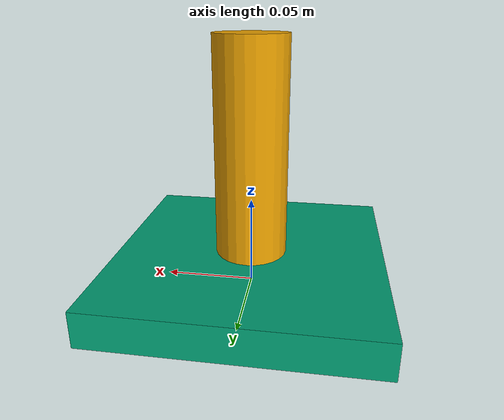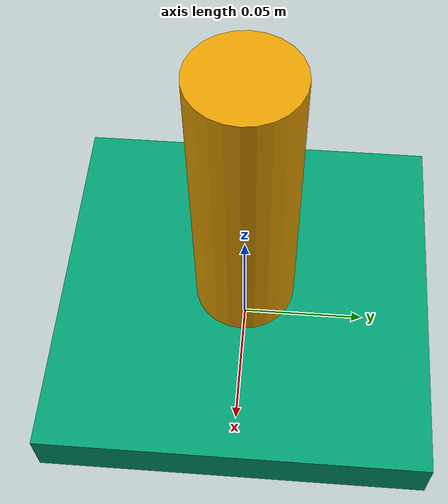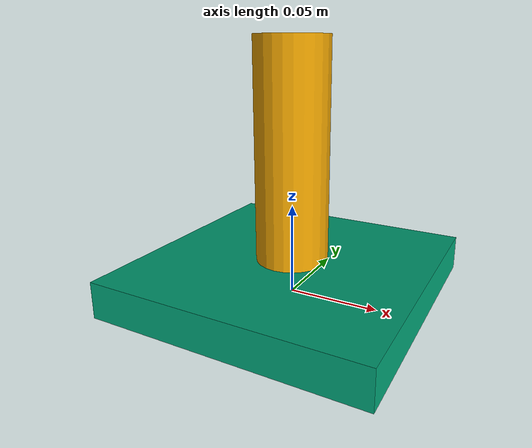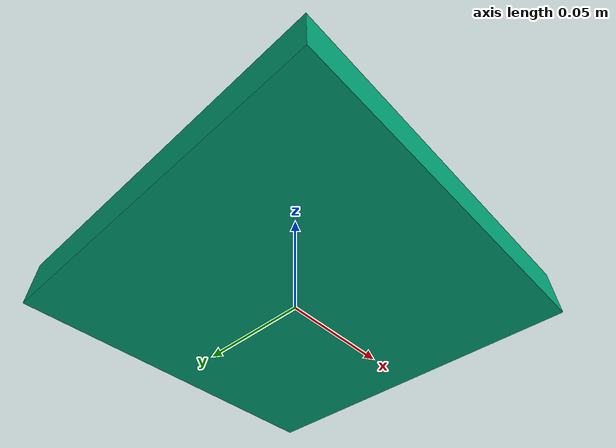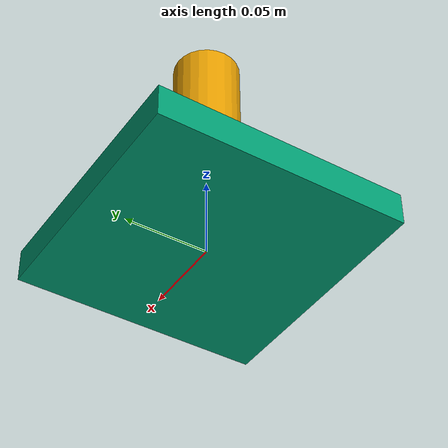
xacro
<?xml version="1.0"?>
<robot name="object_1"
       xmlns:xi="http://www.w3.org/2001/XInclude"
       xmlns:gazebo="http://playerstage.sourceforge.net/gazebo/xmlschema/#gz"
       xmlns:model="http://playerstage.sourceforge.net/gazebo/xmlschema/#model"
       xmlns:sensor="http://playerstage.sourceforge.net/gazebo/xmlschema/#sensor"
       xmlns:body="http://playerstage.sourceforge.net/gazebo/xmlschema/#body"
       xmlns:geom="http://playerstage.sourceforge.net/gazebo/xmlschema/#geom"
       xmlns:joint="http://playerstage.sourceforge.net/gazebo/xmlschema/#joint"
       xmlns:interface="http://playerstage.sourceforge.net/gazebo/xmlschema/#interface"
       xmlns:rendering="http://playerstage.sourceforge.net/gazebo/xmlschema/#rendering"
       xmlns:renderable="http://playerstage.sourceforge.net/gazebo/xmlschema/#renderable"
       xmlns:controller="http://playerstage.sourceforge.net/gazebo/xmlschema/#controller"
       xmlns:physics="http://playerstage.sourceforge.net/gazebo/xmlschema/#physics">

  <property name="object_1_z" value="0.0" />

  <property name="object_1_x" value="0.0" />
  <property name="object_1_y" value="0.0" />

  <property name="object_1_height"      value="0.12" />
  <property name="object_1_radius"      value="0.02" />
  <property name="object_1_base_height" value="0.02" />
  <property name="object_1_base_width"  value="0.15" />
  <property name="object_1_mass"        value="0.2" />
  <property name="object_1_mu"          value="500.0" />
  <joint name="object_1_joint" type="fixed" >
    <parent link="object_1_base_link" />
    <origin xyz="0 0 ${object_1_base_height}" rpy="0 0 0" />
    <child link="object_1_link" />
  </joint>
  <link name="object_1_link">
    <inertial>
      <mass value="${object_1_mass/2.0}" />
      <origin xyz="0 0 ${object_1_height/2}" />
      <inertia ixx="${object_1_mass/20.0}" ixy="0"  ixz="0"
               iyy="${object_1_mass/20.0}" iyz="0"
               izz="${object_1_mass/200.}" />
    </inertial>
    <visual>
      <origin xyz="0.0 0.0 ${object_1_height/2}" rpy="0 0 0" />
      <geometry>
        <cylinder radius="${object_1_radius}" length="${object_1_height}" />
      </geometry>
    </visual>
    <collision>
      <origin xyz="0.0 0.0 ${object_1_height/2}" rpy="0.0 0.0 0.0" />
      <geometry>
        <cylinder radius="${object_1_radius}" length="${object_1_height}" />
      </geometry>
    </collision>
  </link>
  <gazebo reference="object_1_link">
    <material>Gazebo/BumpyMetal</material>
    <mu1>${object_1_mu}</mu1>
    <mu2>${object_1_mu}</mu2>
    <kp>100000000.0</kp>
    <kd>10000000.0</kd>
    <maxVel>1.0</maxVel>
    <selfCollide>true</selfCollide>
    <turnGravityOff>true</turnGravityOff>
    <dampingFactor>0.001</dampingFactor>
  </gazebo>

  <link name="world" />
  <joint name="object_1_base_joint" type="planar" >
    <parent link="world" />
    <origin xyz="${object_1_x} ${object_1_y} ${object_1_z}" rpy="0 0 0" />
    <child link="object_1_base_link" />
  </joint>
  <link name="object_1_base_link">
    <inertial>
      <mass value="${object_1_mass/2.0}" />
      <origin xyz="0 0 ${object_1_base_height/2}" />
      <inertia ixx="${object_1_mass/20.0}" ixy="0"  ixz="0"
               iyy="${object_1_mass/20.0}" iyz="0"
               izz="${object_1_mass/200.}" />
    </inertial>
    <visual>
      <origin xyz="0.0 0.0 ${object_1_base_height/2}" rpy="0 0 0" />
      <geometry>
        <box size="${object_1_base_width} ${object_1_base_width} ${object_1_base_height}" />
      </geometry>
    </visual>
    <collision>
      <origin xyz="0.0 0.0 ${object_1_base_height/2}" rpy="0.0 0.0 0.0" />
      <geometry>
        <box size="${object_1_base_width} ${object_1_base_width} ${object_1_base_height}" />
      </geometry>
    </collision>
  </link>
  <gazebo reference="object_1_base_link">
    <material>Gazebo/RustyBarrel</material>
    <mu1>500.0</mu1>
    <mu2>500.0</mu2>
    <kp>100000000.0</kp>
    <kd>10000000.0</kd>
    <maxVel>1.0</maxVel>
    <selfCollide>true</selfCollide>
    <turnGravityOff>true</turnGravityOff>
    <dampingFactor>0.001</dampingFactor>
  </gazebo>

</robot>
